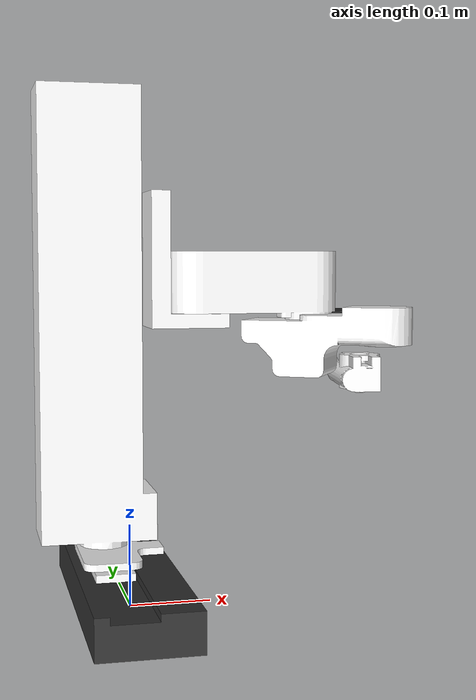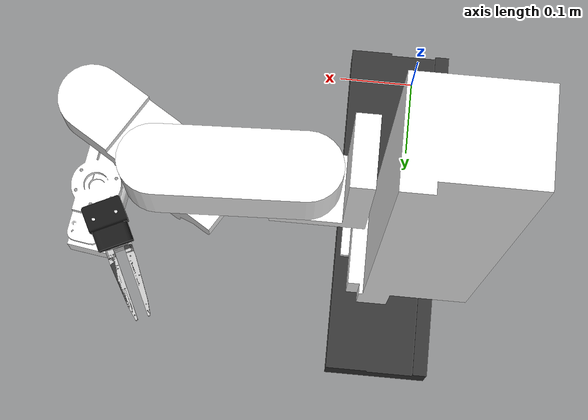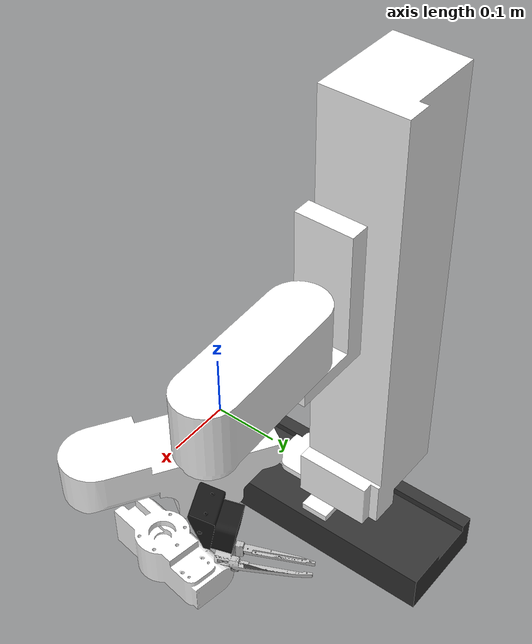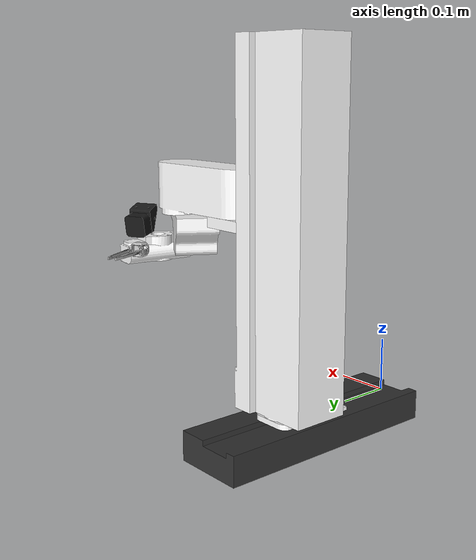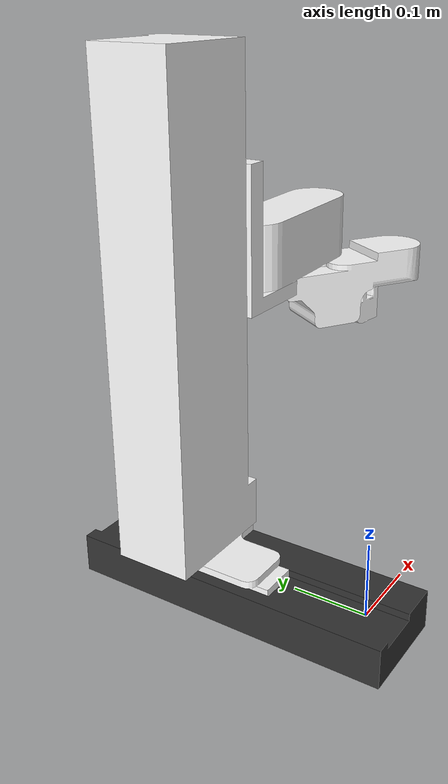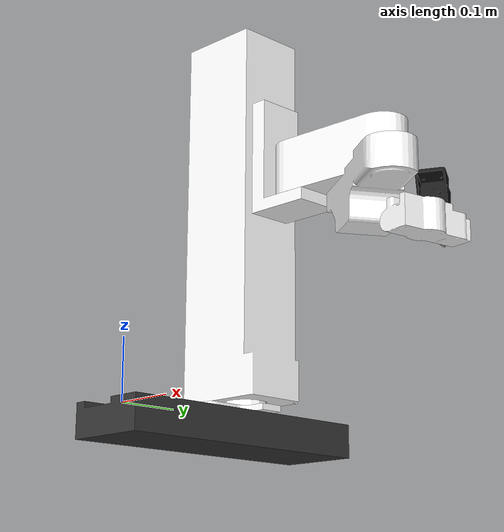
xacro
<?xml version="1.0" encoding="utf-8"?>
<robot xmlns:xacro="http://www.ros.org/wiki/xacro" name="berrybolter_arm">

  <xacro:arg name="prefix" default="" />

  <xacro:property name="tf_prefix" value="$(arg prefix)" />
  <xacro:if value="${tf_prefix != ''}">
      <xacro:property name="tf_prefix" value="$(arg prefix)/" />
  </xacro:if>

  <material name="white_matte">
    <color rgba="1.0 1.0 1.0 1.0"/>
  </material>

  <material name="graphite_grey">
    <color rgba="0.2 0.2 0.2 1.0"/>
  </material>

  <material name="silver_metallic">
    <color rgba="0.75 0.75 0.75 1.0"/>
  </material>

  <material name="camera_black">
    <color rgba="0.1 0.1 0.1 1.0"/>
  </material>

  <link name="${tf_prefix}arm_base"> </link>

  <joint name="arm_base_joint" type="fixed">
    <origin xyz="0 0 0" rpy="0 0 0" />
    <parent link="${tf_prefix}arm_base" />
    <child link="${tf_prefix}base_link" />
    <axis xyz="0 0 0" />
  </joint>

  <link name="${tf_prefix}base_link">
    <inertial>
      <origin xyz="0.0197211670736996 0.182399794343525 -0.0295090040010643" rpy="0 0 0" />
      <mass value="1.06323708367674" />
      <inertia ixx="0.0106130412322237" ixy="6.04961182724918E-07" ixz="-3.49479168027295E-07" iyy="0.00046953336886374" iyz="-5.37613073875177E-07" izz="0.0106608814519074" />
    </inertial>
    <visual>
      <origin xyz="0 0 0" rpy="0 0 0" />
      <geometry>
        <mesh filename="meshes_single_arm/visual/base_link.STL" />
      </geometry>
      <material name="graphite_grey"/>
    </visual>
    <collision>
      <origin xyz="0 0 0" rpy="0 0 0" />
      <geometry>
        <mesh filename="meshes_single_arm/collision/base_link.STL" />
      </geometry>
    </collision>
  </link>

  <link name="${tf_prefix}link1">
    <inertial>
      <origin xyz="0.00506930950822041 -0.0593603114083569 -0.00761106543376755" rpy="0 0 0" />
      <mass value="0.158262849711928" />
      <inertia ixx="0.000225954058093258" ixy="-1.68536374155788E-05" ixz="-4.7610312852057E-07" iyy="0.000114241679910785" iyz="-5.65072531384223E-07" izz="0.000337713332686057" />
    </inertial>
    <visual>
      <origin xyz="0 0 0" rpy="0 0 0" />
      <geometry>
        <mesh filename="meshes_single_arm/visual/link1.STL" />
      </geometry>
      <material name="white_matte"/>
    </visual>
    <collision>
      <origin xyz="0 0 0" rpy="0 0 0" />
      <geometry>
        <mesh filename="meshes_single_arm/collision/link1.STL" />
      </geometry>
    </collision>
  </link>

  <joint name="joint1" type="prismatic">
    <origin xyz="0 0.14775 0.015" rpy="0 0 0" />
    <parent link="${tf_prefix}base_link" />
    <child link="${tf_prefix}link1" />
    <axis xyz="0 1 0" />
    <limit lower="0.001" upper="0.235" effort="0" velocity="0" />
  </joint>

  <link name="${tf_prefix}link2">
    <inertial>
      <origin xyz="0.0184895167105354 -0.0139430145360977 0.23955661765532" rpy="0 0 0" />
      <mass value="2.18422282264348" />
      <inertia ixx="0.0296378356876729" ixy="3.95234042255307E-07" ixz="-5.4329774822049E-06" iyy="0.029579439878013" iyz="9.17655854255314E-05" izz="0.00136581284035559" />
    </inertial>
    <visual>
      <origin xyz="0 0 0" rpy="0 0 0" />
      <geometry>
        <mesh filename="meshes_single_arm/visual/link2.STL" />
      </geometry>
      <material name="white_matte"/>
    </visual>
    <collision>
      <origin xyz="0 0 0" rpy="0 0 0" />
      <geometry>
        <mesh filename="meshes_single_arm/collision/link2.STL" />
      </geometry>
    </collision>
  </link>

  <joint name="joint2" type="revolute">
    <origin xyz="0 -0.01 0" rpy="0 0 0" />
    <parent link="${tf_prefix}link1" />
    <child link="${tf_prefix}link2" />
    <axis xyz="0 0 -1" />
    <limit lower="-6.28" upper="6.28" effort="100" velocity="100" />
  </joint>

  <link name="${tf_prefix}link3">
    <inertial>
      <origin xyz="0.00388065991284213 0.00253110477111378 -0.00928648381246971" rpy="0 0 0" />
      <mass value="0.329043385525775" />
      <inertia ixx="0.000469319685233757" ixy="2.49004452925998E-07" ixz="0.00011328997996073" iyy="0.000508366053747164" iyz="-1.86273600616433E-06" izz="0.000315499973006906" />
    </inertial>
    <visual>
      <origin xyz="0 0 0" rpy="0 0 0" />
      <geometry>
        <mesh filename="meshes_single_arm/visual/link3.STL" />
      </geometry>
      <material name="white_matte"/>
    </visual>
    <collision>
      <origin xyz="0 0 0" rpy="0 0 0" />
      <geometry>
        <mesh filename="meshes_single_arm/collision/link3.STL" />
      </geometry>
    </collision>
  </link>

  <joint name="joint3" type="prismatic">
    <origin xyz="0.09 -0.0090742 0.15096" rpy="0 0 0" />
    <parent link="${tf_prefix}link2" />
    <child link="${tf_prefix}link3" />
    <axis xyz="0 0 1" />
    <limit lower="0.001" upper="0.45" effort="100" velocity="100" />
  </joint>

  <link name="${tf_prefix}link4">
    <inertial>
      <origin xyz="0.0503580079754425 -1.18094902312738E-06 -0.0340360566082137" rpy="0 0 0" />
      <mass value="0.524692553464717" />
      <inertia ixx="0.000351855249124899" ixy="4.9054358893413E-08" ixz="-4.25169598638684E-05" iyy="0.000844815591844293" iyz="-6.934405405398E-09" izz="0.000959740855494068" />
    </inertial>
    <visual>
      <origin xyz="0 0 0" rpy="0 0 0" />
      <geometry>
        <mesh filename="meshes_single_arm/visual/link4.STL" />
      </geometry>
      <material name="white_matte"/>
    </visual>
    <collision>
      <origin xyz="0 0 0" rpy="0 0 0" />
      <geometry>
        <mesh filename="meshes_single_arm/collision/link4.STL" />
      </geometry>
    </collision>
  </link>

  <joint name="joint4" type="revolute">
    <origin xyz="0.044 -0.0011758 -0.044462" rpy="-3.1416 0 1.666" />
    <parent link="${tf_prefix}link3" />
    <child link="${tf_prefix}link4" />
    <axis xyz="0 0 -1" />
    <limit lower="-3.25" upper="-0.001" effort="100" velocity="100" />
  </joint>

  <link name="${tf_prefix}link5">
    <inertial>
      <origin xyz="0.0696595786100513 0.0442438413858763 0.0215608314132782" rpy="0 0 0" />
      <mass value="0.322048325914565" />
      <inertia ixx="0.000272154691570352" ixy="-0.000117122104649212" ixz="1.82097588815412E-05" iyy="0.000382683986902875" iyz="1.16244011164403E-05" izz="0.000539729810082325" />
    </inertial>
    <visual>
      <origin xyz="0 0 0" rpy="0 0 0" />
      <geometry>
        <mesh filename="meshes_single_arm/visual/link5.STL" />
      </geometry>
      <material name="white_matte"/>
    </visual>
    <collision>
      <origin xyz="0 0 0" rpy="0 0 0" />
      <geometry>
        <mesh filename="meshes_single_arm/collision/link5.STL" />
      </geometry>
    </collision>
  </link>

  <joint name="joint5" type="revolute">
    <origin xyz="0.12 0 0.011" rpy="-3.1416 0 2.3966" />
    <parent link="${tf_prefix}link4" />
    <child link="${tf_prefix}link5" />
    <axis xyz="0 0 -1" />
    <limit lower="-3.6" upper="-0.001" effort="100" velocity="100" />
  </joint>

  <link name="${tf_prefix}link6">
    <inertial>
      <origin xyz="-0.00898350703370449 0.0018860042428713 -0.0210412937652294" rpy="0 0 0" />
      <mass value="0.253827881523726" />
      <inertia ixx="9.15686968551811E-05" ixy="-2.69909446757586E-05" ixz="-6.02648533003112E-06" iyy="0.000118166267760229" iyz="-2.85934681064961E-06" izz="0.000167537055343731" />
    </inertial>
    <visual>
      <origin xyz="0 0 0" rpy="0 0 0" />
      <geometry>
        <mesh filename="meshes_single_arm/visual/link6.STL" />
      </geometry>
      <material name="white_matte"/>
    </visual>
    <collision>
      <origin xyz="0 0 0" rpy="0 0 0" />
      <geometry>
        <mesh filename="meshes_single_arm/collision/link6.STL" />
      </geometry>
    </collision>
  </link>

  <joint name="joint6" type="revolute">
    <origin xyz="0.10972 0.069719 -0.048" rpy="0 0 1.9745" />
    <parent link="${tf_prefix}link5" />
    <child link="${tf_prefix}link6" />
    <axis xyz="0 0 -1" />
    <limit lower="0" upper="4.0" effort="100" velocity="100" />
  </joint>

  <link name="${tf_prefix}link7">
    <inertial>
      <origin xyz="-5.13695096159006E-05 7.66057638060258E-05 0.0225778253514557" rpy="0 0 0" />
      <mass value="0.018196495395731" />
      <inertia ixx="4.10896230653745E-06" ixy="-3.93663694833085E-08" ixz="-3.47719080910136E-09" iyy="4.17136180393792E-06" iyz="-1.77211286610884E-08" izz="1.40911236957971E-06" />
    </inertial>
    <visual>
      <origin xyz="0 0 0" rpy="0 0 0" />
      <geometry>
        <mesh filename="meshes_single_arm/visual/link7.STL" />
      </geometry>
      <material name="silver_metallic"/>
    </visual>
    <collision>
      <origin xyz="0 0 0" rpy="0 0 0" />
      <geometry>
        <mesh filename="meshes_single_arm/collision/link7.STL" />
      </geometry>
    </collision>
  </link>

  <joint name="joint7" type="revolute">
    <origin xyz="0.050498 0.034219 -0.02501" rpy="-1.5708 0 -0.97525" />
    <parent link="${tf_prefix}link6" />
    <child link="${tf_prefix}link7" />
    <axis xyz="0 0 -1" />
    <limit lower="-3.14" upper="3.14" effort="100" velocity="100" />
  </joint>

  <link name="${tf_prefix}ee_link">
    <inertial>
      <origin xyz="-0.000104505874267746 0.000576605763808247 -0.0439221746485539" rpy="0 0 0" />
      <mass value="0.018196495395731" />
      <inertia ixx="4.10896230653843E-06" ixy="-3.93663694832292E-08" ixz="-3.47719080912441E-09" iyy="4.17136180393797E-06" iyz="-1.77211286611878E-08" izz="1.40911236958069E-06" />
    </inertial>
    <visual>
      <origin xyz="0 0 0" rpy="0 0 0" />
      <geometry>
        <mesh filename="meshes_single_arm/visual/ee_link.STL" />
      </geometry>
      <material name="graphite_grey"/>
    </visual>
    <collision>
      <origin xyz="0 0 0" rpy="0 0 0" />
      <geometry>
        <mesh filename="meshes_single_arm/collision/ee_link.STL" />
      </geometry>
    </collision>
  </link>

  <joint name="ee_joint" type="fixed">
    <origin xyz="5.3136E-05 -0.0005 0.0665" rpy="0 0 0" />
    <parent link="${tf_prefix}link7" />
    <child link="${tf_prefix}ee_link" />
    <axis xyz="0 0 0" />
    <limit lower="0" upper="0" effort="0" velocity="0" />
  </joint>

  <link name="${tf_prefix}camera_link">
    <inertial>
      <origin xyz="-0.00836173295042576 -0.0089553548686081 -0.00680992475882553" rpy="0 0 0" />
      <mass value="0.031379859428563" />
      <inertia ixx="1.2078665761647E-05" ixy="6.71231870716078E-10" ixz="-1.23446693039961E-06" iyy="7.09477740111002E-06" iyz="3.79676979930018E-10" izz="7.52636014077323E-06" />
    </inertial>
    <visual>
      <origin xyz="0 0 0" rpy="0 0 0" />
      <geometry>
        <mesh filename="meshes_single_arm/visual/camera_link.STL" />
      </geometry>
      <material name="camera_black"/>
    </visual>
    <collision>
      <origin xyz="0 0 0" rpy="0 0 0" />
      <geometry>
        <mesh filename="meshes_single_arm/collision/camera_link.STL" />
      </geometry>
    </collision>
  </link>

  <joint name="camera_joint" type="fixed">
    <origin xyz="0.0535264795602718 0.0471423874193815 0.0242769003020624" rpy="0 0.174532925199436 0.59554890101875" />
    <parent link="${tf_prefix}link6" />
    <child link="${tf_prefix}camera_link" />
    <axis xyz="0 0 0" />
  </joint>

</robot>
